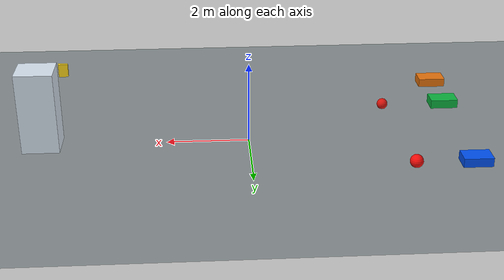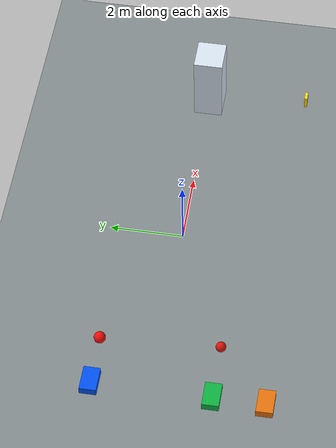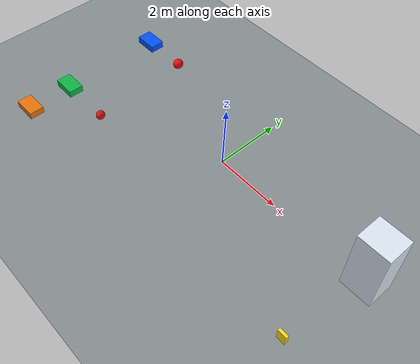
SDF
<?xml version="1.0" ?>
<sdf version="1.9">
  <world name="lammap_demo">
    <physics name="default_physics" type="ignored">
      <max_step_size>0.01</max_step_size>
      <real_time_factor>1.0</real_time_factor>
    </physics>

    <light name="sun" type="directional">
      <pose>0 0 10 0 0 0</pose>
      <diffuse>0.8 0.8 0.8 1</diffuse>
      <specular>0.2 0.2 0.2 1</specular>
      <direction>-0.5 0.1 -0.9</direction>
    </light>

    <model name="ground_plane">
      <static>true</static>
      <link name="link">
        <collision name="collision">
          <geometry>
            <plane>
              <normal>0 0 1</normal>
              <size>14 10</size>
            </plane>
          </geometry>
        </collision>
        <visual name="visual">
          <geometry>
            <plane>
              <normal>0 0 1</normal>
              <size>14 10</size>
            </plane>
          </geometry>
          <material>
            <ambient>0.52 0.55 0.56 1</ambient>
            <diffuse>0.52 0.55 0.56 1</diffuse>
          </material>
        </visual>
      </link>
    </model>

    <model name="fridge">
      <static>true</static>
      <pose>5.0 0.0 1.0 0 0 0</pose>
      <link name="body">
        <visual name="visual">
          <geometry><box><size>0.9 0.8 2.0</size></box></geometry>
          <material>
            <ambient>0.85 0.9 0.95 1</ambient>
            <diffuse>0.85 0.9 0.95 1</diffuse>
          </material>
        </visual>
        <collision name="collision">
          <geometry><box><size>0.9 0.8 2.0</size></box></geometry>
        </collision>
      </link>
    </model>

    <model name="light_switch">
      <static>true</static>
      <pose>4.8 -2.8 0.8 0 0 0</pose>
      <link name="body">
        <visual name="visual">
          <geometry><box><size>0.25 0.08 0.35</size></box></geometry>
          <material>
            <ambient>1.0 0.85 0.1 1</ambient>
            <diffuse>1.0 0.85 0.1 1</diffuse>
          </material>
        </visual>
      </link>
    </model>

    <model name="apple">
      <static>false</static>
      <pose>-3.8 1.6 0.16 0 0 0</pose>
      <link name="body">
        <inertial><mass>0.1</mass></inertial>
        <visual name="visual">
          <geometry><sphere><radius>0.16</radius></sphere></geometry>
          <material>
            <ambient>0.95 0.05 0.04 1</ambient>
            <diffuse>0.95 0.05 0.04 1</diffuse>
          </material>
        </visual>
        <collision name="collision">
          <geometry><sphere><radius>0.16</radius></sphere></geometry>
        </collision>
      </link>
    </model>

    <model name="tomato">
      <static>false</static>
      <pose>-3.6 -1.6 0.14 0 0 0</pose>
      <link name="body">
        <inertial><mass>0.08</mass></inertial>
        <visual name="visual">
          <geometry><sphere><radius>0.14</radius></sphere></geometry>
          <material>
            <ambient>0.85 0.08 0.05 1</ambient>
            <diffuse>0.85 0.08 0.05 1</diffuse>
          </material>
        </visual>
        <collision name="collision">
          <geometry><sphere><radius>0.14</radius></sphere></geometry>
        </collision>
      </link>
    </model>

    <model name="robot1">
      <static>false</static>
      <pose>-5.2 1.6 0.18 0 0 0</pose>
      <link name="base">
        <inertial><mass>8.0</mass></inertial>
        <visual name="base_visual">
          <geometry><box><size>0.7 0.45 0.22</size></box></geometry>
          <material><ambient>0.0 0.32 0.95 1</ambient><diffuse>0.0 0.32 0.95 1</diffuse></material>
        </visual>
        <collision name="base_collision">
          <geometry><box><size>0.7 0.45 0.22</size></box></geometry>
        </collision>
      </link>
    </model>

    <model name="robot2">
      <static>false</static>
      <pose>-5.2 -1.6 0.18 0 0 0</pose>
      <link name="base">
        <inertial><mass>8.0</mass></inertial>
        <visual name="base_visual">
          <geometry><box><size>0.7 0.45 0.22</size></box></geometry>
          <material><ambient>0.05 0.7 0.25 1</ambient><diffuse>0.05 0.7 0.25 1</diffuse></material>
        </visual>
        <collision name="base_collision">
          <geometry><box><size>0.7 0.45 0.22</size></box></geometry>
        </collision>
      </link>
    </model>

    <model name="robot3">
      <static>false</static>
      <pose>-5.2 -3.0 0.18 0 0 0</pose>
      <link name="base">
        <inertial><mass>8.0</mass></inertial>
        <visual name="base_visual">
          <geometry><box><size>0.7 0.45 0.22</size></box></geometry>
          <material><ambient>0.9 0.45 0.05 1</ambient><diffuse>0.9 0.45 0.05 1</diffuse></material>
        </visual>
        <collision name="base_collision">
          <geometry><box><size>0.7 0.45 0.22</size></box></geometry>
        </collision>
      </link>
    </model>
  </world>
</sdf>
